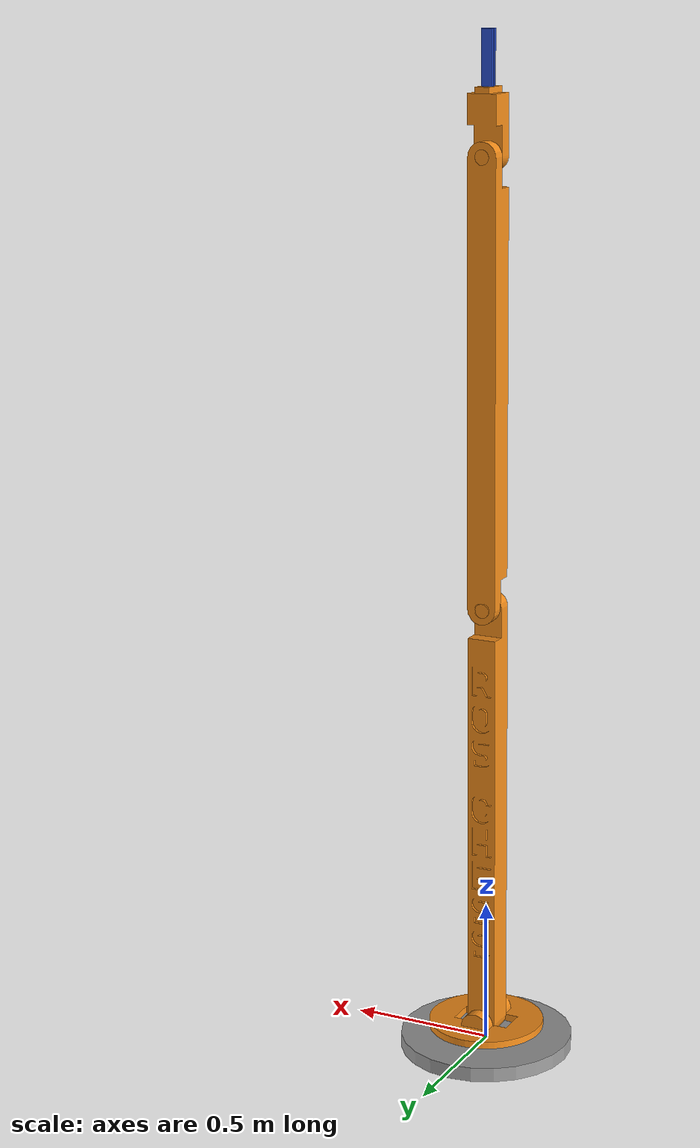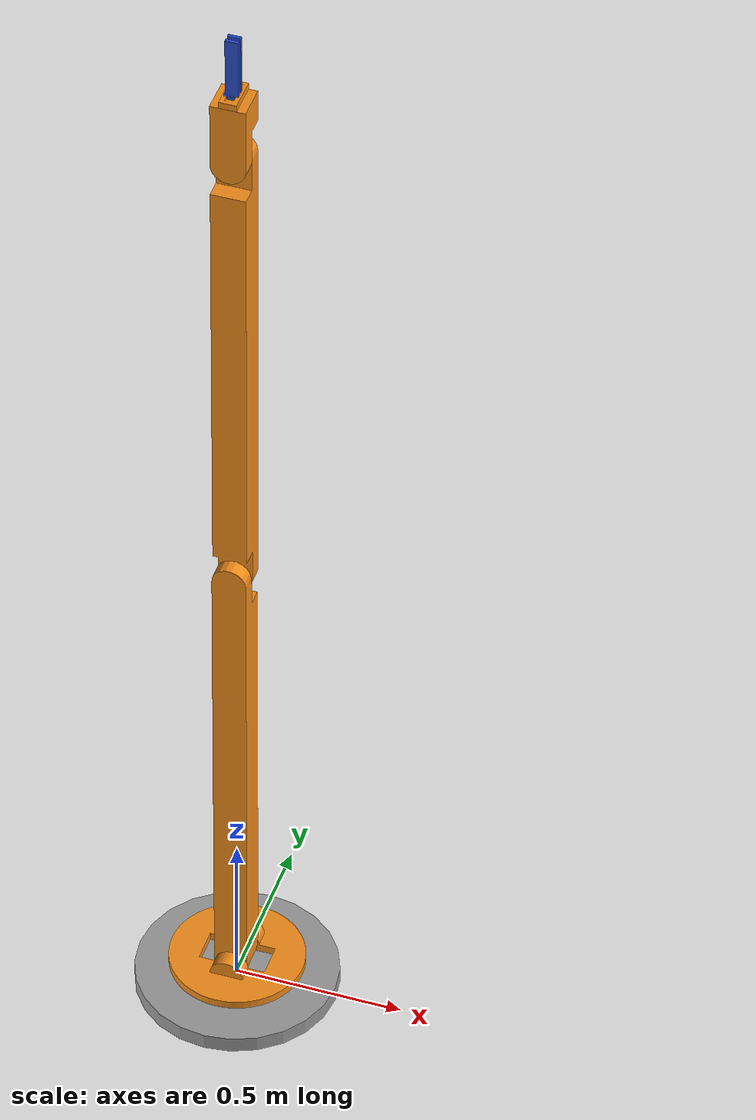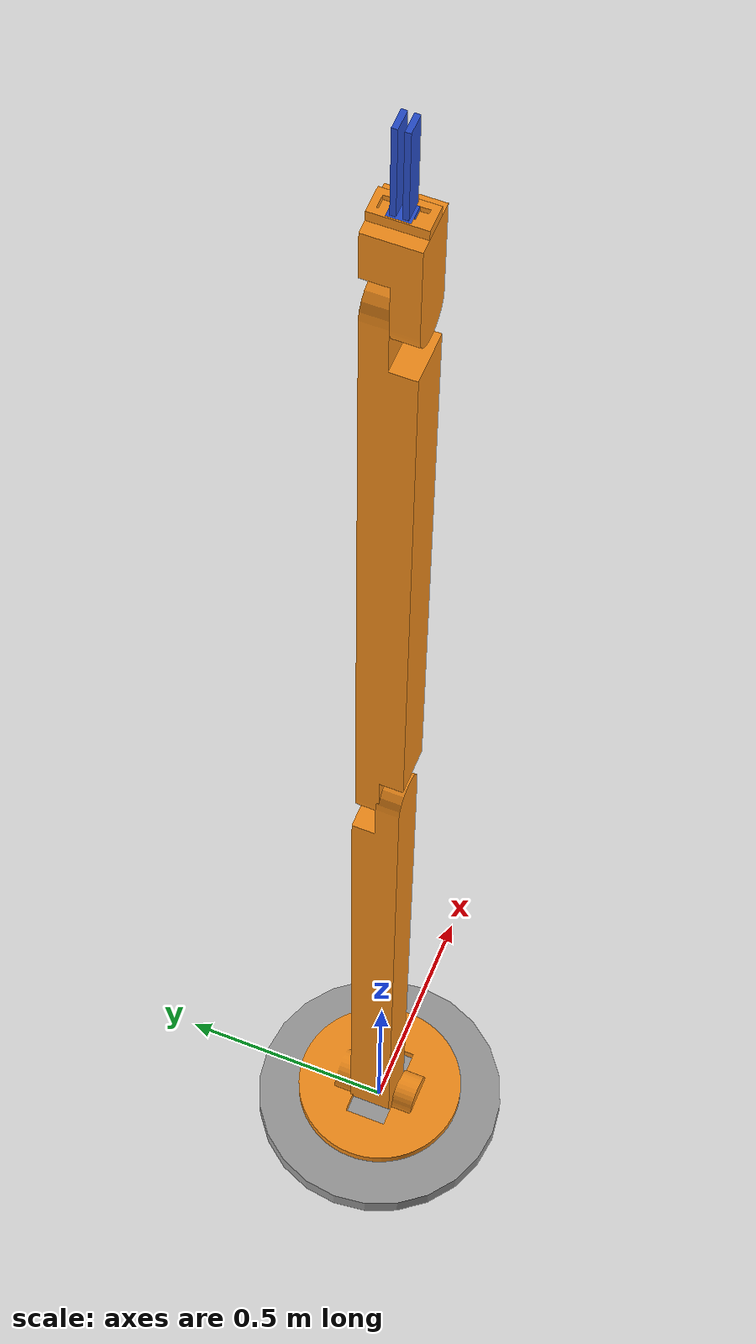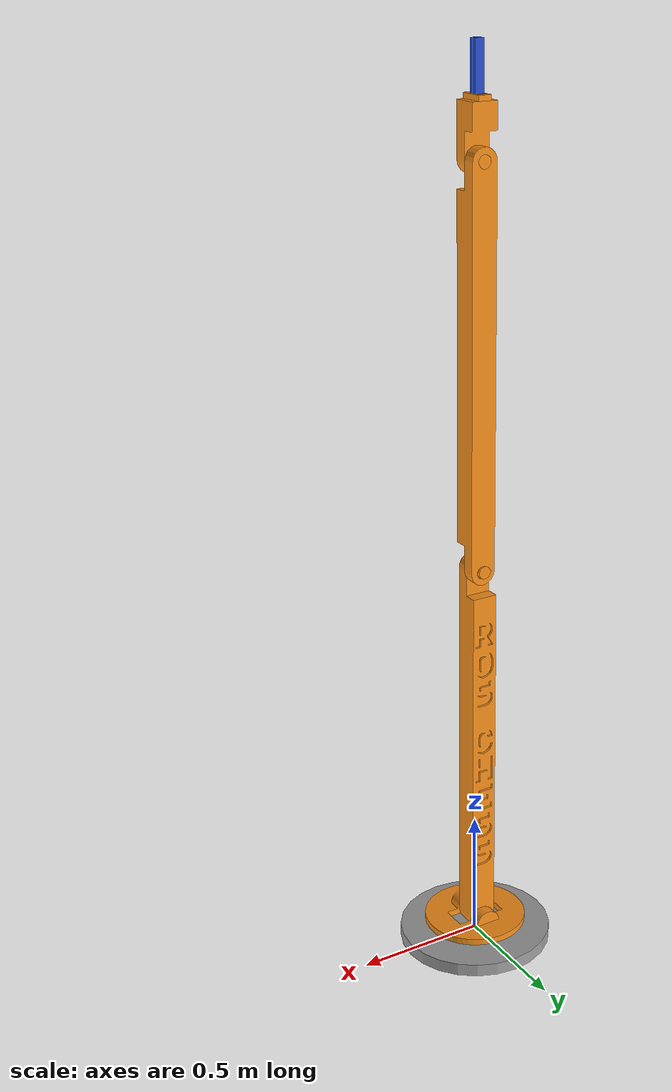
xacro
<?xml version='1.0'?>

<robot name="chess_bot" xmlns:xacro="http://www.ros.org/wiki/xacro">

  <!-- RViz colors -->
  <xacro:include filename="$(find ros_chess)/urdf/materials.xacro" />
  <!-- Transmisions -->
  <xacro:include filename="$(find ros_chess)/urdf/transmission.xacro" />
  <!-- Gazebo plugin -->
  <xacro:include filename="$(find ros_chess)/urdf/chess_robot.gazebo" />

   <!-- Global reference link -->
  <link name="world"/>

  <joint name="fixed_base" type="fixed">
    <parent link="world"/>
    <child link="base_link"/>
  </joint>

  <!-- Arm base link -->
  <link name="base_link">
    <inertial>
      <mass value="5"/>
      <origin xyz="0.0 0.0 0"/>
      <inertia ixx="0.1135" ixy="0.0" ixz="0.0"
               iyy="0.1135" iyz="0.0"
               izz="0.0225"
      />
    </inertial>
    <collision>
      <geometry>
        <cylinder radius="0.3" length="0.05"/>
      </geometry>
      <origin xyz="0.0 0.0 0.0" rpy="0.0 0.0 0.0"/>
    </collision>
    <visual>
      <geometry>
        <cylinder radius="0.3" length="0.05"/>
      </geometry>
      <material name="grey"/>
      <origin xyz="0.0 0.0 0.0" rpy="0.0 0.0 0.0"/>
    </visual>
  </link>

  <gazebo reference="base_link">
    <material>Gazebo/Grey</material>
  </gazebo>

  <!-- Shoulder pan joint -->
  <joint name="J1_shoulder_pan_joint" type="revolute">
    <limit lower="-3.14" upper="3.14" effort="1000" velocity="3.14"/>
    <parent link="base_link"/>
    <child link="shoulder_link"/>
    <axis xyz="0 0 1"/>
    <origin xyz="0.0 0.0 0.05" rpy="0.0 0.0 0.0"/>
    <dynamics damping="0.0" friction="0.0"/>
  </joint>

  <!-- Shoulder link -->
  <link name="shoulder_link">
    <inertial>
      <mass value="2"/>
      <origin xyz="0.0 0.0 0.0" rpy="0.0 0.0 0.0"/>
      <inertia ixx="0.0317" ixy="0.0" ixz="0.0"
               iyy="0.0317" iyz="0.0"
               izz="0.0625"
      />
    </inertial>
    <collision>
      <geometry>
        <cylinder radius="0.25" length="0.05"/>
      </geometry>
      <origin xyz="0.0 0.0 0.0" rpy="0.0 0.0 0.0"/>
    </collision>
    <visual>
      <geometry>
        <mesh filename = "package://ros_chess/gazebo_models/robot_arm/shoulder.dae"/>
      </geometry>
      <material name="orange"/>
      <origin xyz="0.0 0.0 0.0" rpy="0.0 0.0 0.0"/>
    </visual>
  </link>

  <gazebo reference="shoulder_link">
    <material>Gazebo/Orange</material>
  </gazebo>

  <!-- Shoulder lift joint -->
  <joint name="J2_shoulder_lift_joint" type="revolute">
    <limit lower="-1.5708" upper="1.5708" effort="500" velocity="3.14"/>
    <parent link="shoulder_link"/>
    <child link="upper_arm_link"/>
    <axis xyz="0 1 0"/>
    <origin xyz="0.0 0.0 0.025" rpy="0.0 0.0 0.0"/>
    <dynamics damping="0.0" friction="0.0"/>
  </joint>

   <!-- Upper arm link -->
  <link name="upper_arm_link">
    <inertial>
      <mass value="3"/>
      <origin xyz="0.0 0.0 0.1" rpy="0.0 0.0 0.0"/>
      <inertia ixx="0.2575" ixy="0.0" ixz="0.0"
               iyy="0.2575" iyz="0.0"
               izz="0.0150"
      />
    </inertial>
    <collision>
      <geometry>
        <cylinder radius="0.1" length="1.5"/>
      </geometry>
      <origin xyz="0.0 0.0 0.75" rpy="0.0 0.0 0.0"/>
    </collision>
    <visual>
      <geometry>
        <mesh filename = "package://ros_chess/gazebo_models/robot_arm/upper_arm.dae"/>
      </geometry>
      <material name="orange"/>
      <origin xyz="0.0 0.0 0.0" rpy="0.0 0.0 0.0"/>
    </visual>
  </link>

  <gazebo reference="upper_arm_link">
    <material>Gazebo/Orange</material>
  </gazebo>

  <!-- Elbow joint -->
  <joint name="J3_elbow_joint" type="revolute">
    <limit lower="-2.3562" upper="2.3562" effort="500" velocity="3.14"/>
    <parent link="upper_arm_link"/>
    <child link="forearm_link"/>
    <axis xyz="0 1 0"/>
    <origin xyz="0.0 0.0 1.5" rpy="0.0 0.0 0.0"/>
    <dynamics damping="0.0" friction="0.0"/>
  </joint>

  <!-- Forearm link -->
  <link name="forearm_link">
    <inertial>
      <mass value="2.5"/>
      <origin xyz="0.0 0.0 0.125" rpy="0.0 0.0 0.0"/>
      <inertia ixx="0.2146" ixy="0.0" ixz="0.0"
               iyy="0.2146" iyz="0.0"
               izz="0.0125"
      />
    </inertial>
    <collision>
      <geometry>
        <cylinder radius="0.10" length="1.5"/>
      </geometry>
      <origin xyz="0.0 0.0 0.75" rpy="0.0 0.0 0.0"/>
    </collision>
    <visual>
      <geometry>
        <mesh filename = "package://ros_chess/gazebo_models/robot_arm/forearm.dae"/>
      </geometry>
      <material name="orange"/>
      <origin xyz="0.0 0.0 0.0" rpy="1.57079632679  0.0 0.0"/>
    </visual>
  </link>

  <gazebo reference="forearm_link">
    <material>Gazebo/Orange</material>
  </gazebo>

  <!-- Wrist joint -->
  <joint name="J4_wrist_joint" type="revolute">
    <limit lower="-2.3562" upper="2.3562" effort="200" velocity="3.14"/>
    <parent link="forearm_link"/>
    <child link="wrist_link"/>
    <axis xyz="0 1 0"/>
    <origin xyz="0.0 0.0 1.5" rpy="0.0 0.0 0.0"/>
    <dynamics damping="0.0" friction="0.0"/>
  </joint>

   <!-- Wrist link -->
  <link name="wrist_link">
    <inertial>
      <mass value="0.1"/>
      <origin xyz="0.0 0.0 0.05" rpy="0.0 0.0 0.0"/>
      <inertia ixx="0.00009" ixy="0.0" ixz="0.0"
               iyy="0.00009" iyz="0.0"
               izz="0.00002"
      />
    </inertial>
    <collision>
      <geometry>
        <cylinder radius="0.05" length="0.2"/>
      </geometry>
      <origin xyz="0.0 0.0 0.1" rpy="0.0 0.0 0.0"/>
    </collision>
    <visual>
      <geometry>
        <mesh filename = "package://ros_chess/gazebo_models/robot_arm/wrist.dae"/>
      </geometry>
      <material name="orange"/>
      <origin xyz="-0.1 -0.15 0.15" rpy="0.0 0.0 0.0"/>
    </visual>
  </link>

  <gazebo reference="wrist_link">
    <material>Gazebo/Orange</material>
  </gazebo>

  <!-- Gripper base pan joint -->
  <joint name="J5_gripper_pan_joint" type="revolute">
    <limit lower="-3.14" upper="3.14" effort="100" velocity="3.14"/>
    <parent link="wrist_link"/>
    <child link="gripper_base_link"/>
    <axis xyz="0 0 1"/>
    <origin xyz="0.0 0.0 0.2" rpy="0.0 0.0 0.0"/>
    <dynamics damping="0.0" friction="0.0"/>
  </joint>

  <!-- Gripper base -->
  <link name="gripper_base_link">
    <inertial>
      <mass value="0.03"/>
      <origin xyz="0.0 0.0 0.0" rpy="0.0 0.0 0.0"/>
      <inertia ixx="0.0317" ixy="0.0" ixz="0.0"
               iyy="0.0317" iyz="0.0"
               izz="0.0625"
      />
    </inertial>
    <collision>
      <geometry>
        <box size=".1 .3 .02"/>
      </geometry>
      <origin xyz="0.0 0.0 0.01" rpy="0.0 0.0 0.0"/>
    </collision>
    <visual>
      <geometry>
        <mesh filename = "package://ros_chess/gazebo_models/robot_arm/gripper_base.dae"/>
      </geometry>
      <material name="orange"/>
      <origin xyz="0.0 0.0 0.0" rpy="0.0 0.0 0.0"/>
    </visual>
  </link>

  <gazebo reference="shoulder_link">
    <material>Gazebo/Orange</material>
  </gazebo>

   <!-- Left finger joint -->
  <joint name="J6_left_finger_joint" type="prismatic">
    <limit lower="0" upper="0.05" effort="50.0" velocity="4.0"/>
    <parent link="gripper_base_link"/>
    <child link="left_finger"/>
    <axis xyz="0 1 0"/>
    <origin xyz="0.0 0.01 0.1" />
  </joint>

  <!-- Left finger link -->
  <link name="left_finger">
    <inertial>
      <mass value="0.01"/>
      <origin xyz="0.0 0.0 0.2" rpy="0.0 0.0 0.0"/>
      <inertia ixx="0.0009" ixy="0.0" ixz="0.0"
               iyy="0.0009" iyz="0.0"
               izz="0.0002"
      />
    </inertial>
    <collision>
      <geometry>
        <box size="0.02 0.015 0.2"/>
      </geometry>
      <origin xyz="0.0 0.0 0.0" rpy="0.0 0.0 0.0"/>
    </collision>
    <visual>
      <geometry>
        <box size="0.0375 0.01 0.2"/>
      </geometry>
      <origin xyz="0.0 0.0 0.0" rpy="0.0 0.0 0.0"/>
    </visual>
  </link>

  <gazebo reference="left_finger">
    <kp>1000000.0</kp>
    <kd>100.0</kd>
    <mu1>15</mu1>
    <mu2>15</mu2>
    <fdir1>1 0 0</fdir1>
    <maxVel>1.0</maxVel>
    <minDepth>0.002</minDepth>
    <material>Gazebo/Blue</material>
  </gazebo>

  <!-- Right finger joint -->
  <joint name="J7_right_finger_joint" type="prismatic">
    <limit lower="0" upper="0.05" effort="50.0" velocity="4.0"/>
    <parent link="gripper_base_link"/>
    <child link="right_finger"/>
    <axis xyz="0 -1 0"/>
    <origin xyz="0.0 -0.01 0.1" />
  </joint>

  <!-- Right finger link -->
  <link name="right_finger">
    <inertial>
      <mass value="0.01"/>
      <origin xyz="0.0 0.0 0.2" rpy="0.0 0.0 0.0"/>
      <inertia ixx="0.0009" ixy="0.0" ixz="0.0"
               iyy="0.0009" iyz="0.0"
               izz="0.0002"
      />
    </inertial>
    <collision>
      <geometry>
        <box size="0.02 0.005 0.1"/>
      </geometry>
      <origin xyz="0.0 0.0 0.0" rpy="0.0 0.0 0.0"/>
    </collision>
    <visual>
      <geometry>
        <box size="0.0375 0.01 0.2"/>
      </geometry>
      <origin xyz="0.0 0.0 0.0" rpy="0.0 0.0 0.0"/>
    </visual>
  </link>

  <gazebo reference="right_finger">
    <kp>1000000.0</kp>
    <kd>100.0</kd>
    <mu1>15</mu1>
    <mu2>15</mu2>
    <fdir1>1 0 0</fdir1>
    <maxVel>1.0</maxVel>
    <minDepth>0.002</minDepth>
    <material>Gazebo/Blue</material>
  </gazebo>

   <!-- Camera -->
  <joint type="fixed" name="camera_joint">
    <origin xyz="0 0 0" rpy="0 -1.57 0"/>
    <child link="camera_link"/>
    <parent link="gripper_base_link"/>
    <axis xyz="0 1 0" />
  </joint>

  <link name='camera_link'>
    <pose>0 0 0 0 0 0</pose>
    <inertial>
      <mass value="0.1"/>
      <origin xyz="0 0 0" rpy="0 0 0"/>
      <inertia
          ixx="1e-6" ixy="0" ixz="0"
          iyy="1e-6" iyz="0"
          izz="1e-6"
      />
    </inertial>

    <collision name='collision'>
      <origin xyz="0 0 0" rpy="0 0 0"/>
      <geometry>
        <box size=".05 .05 .05"/>
      </geometry>
    </collision>

    <visual name='camera_link_visual'>
      <origin xyz="0 0 0" rpy="0 0 0"/>
      <geometry>
        <box size=".04 .04 .045"/>
      </geometry>
    </visual>

  </link>

  <gazebo reference="camera_link">
    <material>Gazebo/Blue</material>
  </gazebo>

  <joint type="fixed" name="camera_optical_joint">
    <origin xyz="0 0 0" rpy="-1.5707 0 -1.5707"/>
    <child link="camera_link_optical"/>
    <parent link="camera_link"/>
  </joint>

  <link name="camera_link_optical">
  </link>

  </robot>
